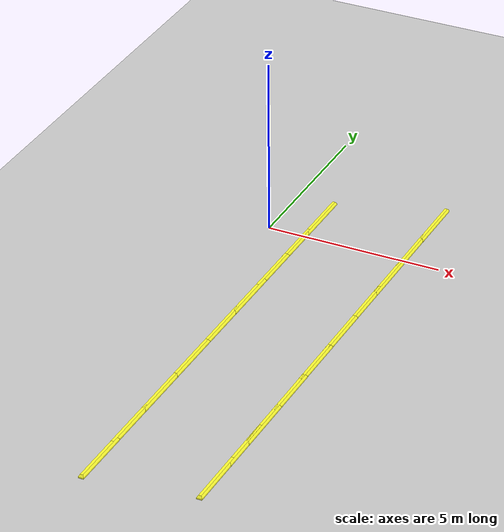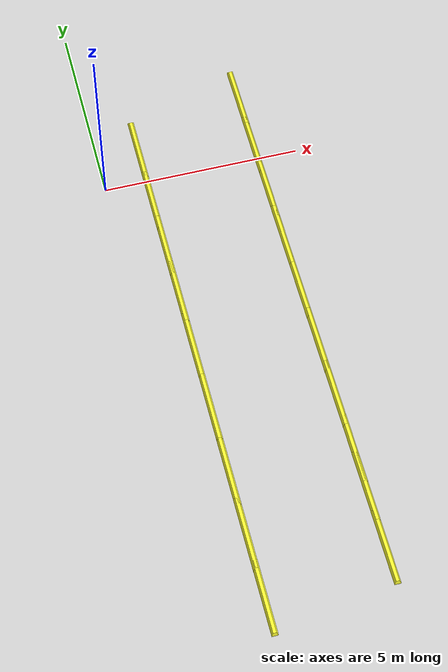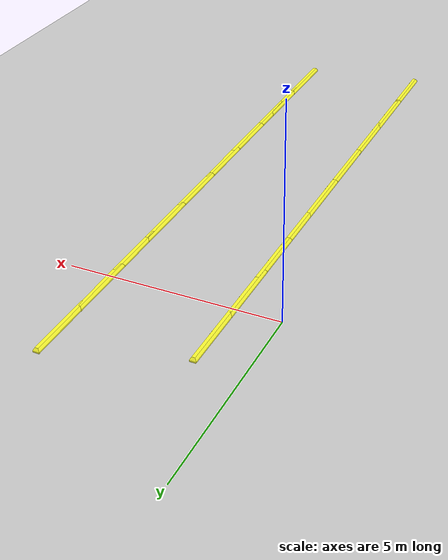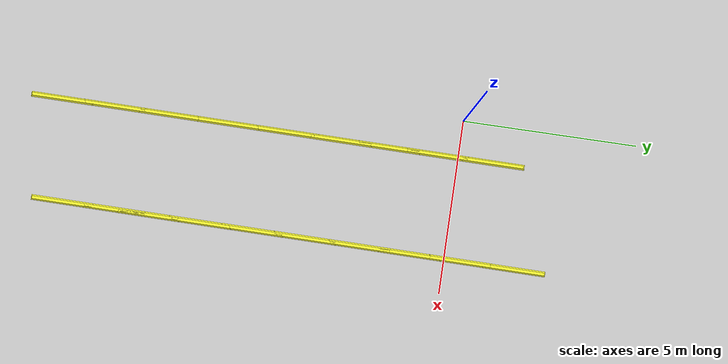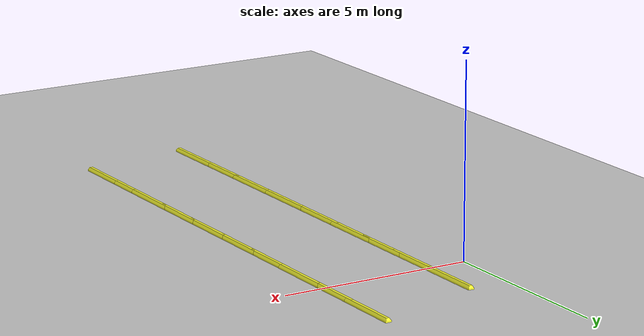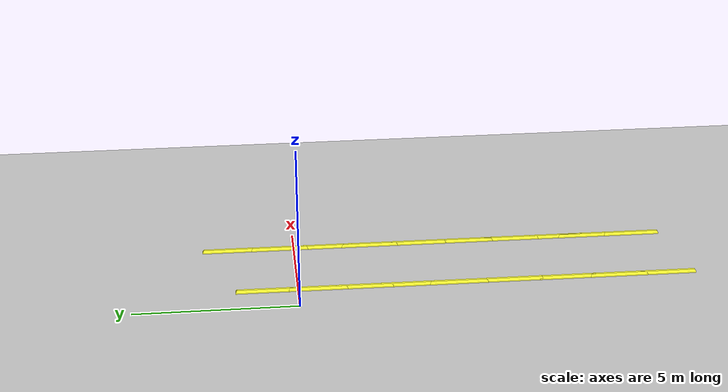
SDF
<sdf version="1.4">
 <world name="default">
  <light name="sun" type="directional">
   <pose>0 0 10 0 -0 0</pose>
   <diffuse>0.8 0.8 0.8 1</diffuse>
   <specular>0.2 0.2 0.2 1</specular>
   <attenuation>
    <range>1000</range>
    <constant>0.9</constant>
    <linear>0.01</linear>
    <quadratic>0.001</quadratic>
   </attenuation>
   <direction>-0.5 0.1 -0.9</direction>
  </light>
  <model name="ground_plane">
   <static>1</static>
   <link name="link">
    <collision name="collision">
     <geometry><plane><normal>0 0 1</normal><size>100 100</size></plane></geometry>
     <surface><friction><ode><mu>100</mu><mu2>50</mu2></ode></friction></surface>
    </collision>
    <visual name="visual">
     <cast_shadows>0</cast_shadows>
     <geometry><plane><normal>0 0 1</normal><size>100 100</size></plane></geometry>
     <material>
      <script><uri>file://media/materials/scripts/gazebo.material</uri><name>Gazebo/Grey</name></script>
     </material>
    </visual>
    <velocity_decay><linear>0</linear><angular>0</angular></velocity_decay>
   </link>
  </model>
  <physics type="ode">
   <max_step_size>0.001</max_step_size>
   <real_time_factor>1</real_time_factor>
   <real_time_update_rate>1000</real_time_update_rate>
   <gravity>0 0 -9.8</gravity>
  </physics>
  <scene><ambient>0.4 0.4 0.4 1</ambient><background>0.7 0.7 0.7 1</background><shadows>1</shadows></scene>
  <spherical_coordinates>
   <surface_model>EARTH_WGS84</surface_model>
   <latitude_deg>0</latitude_deg>
   <longitude_deg>0</longitude_deg>
   <elevation>0</elevation>
   <heading_deg>0</heading_deg>
  </spherical_coordinates>
  <model name="drc_practice_yellow_parking_block_1">
   <static>1</static>
   <link name="link">
    <visual name="visual">
     <geometry><mesh><uri>model://drc_practice_yellow_parking_block/meshes/block.dae</uri></mesh></geometry>
    </visual>
    <collision name="collision">
     <geometry><mesh><uri>model://drc_practice_yellow_parking_block/meshes/block.dae</uri></mesh></geometry>
    </collision>
    <velocity_decay><linear>0</linear><angular>0</angular></velocity_decay>
   </link>
   <pose>3.96924 -8.52654 0 0 -0 0</pose>
  </model>
  <model name="drc_practice_yellow_parking_block_2">
   <static>1</static>
   <link name="link">
    <visual name="visual">
     <geometry><mesh><uri>model://drc_practice_yellow_parking_block/meshes/block.dae</uri></mesh></geometry>
    </visual>
    <collision name="collision">
     <geometry><mesh><uri>model://drc_practice_yellow_parking_block/meshes/block.dae</uri></mesh></geometry>
    </collision>
    <velocity_decay><linear>0</linear><angular>0</angular></velocity_decay>
   </link>
   <pose>3.9746 -7.03427 0 0 -0 0</pose>
  </model>
  <model name="drc_practice_yellow_parking_block_3">
   <static>1</static>
   <link name="link">
    <visual name="visual">
     <geometry><mesh><uri>model://drc_practice_yellow_parking_block/meshes/block.dae</uri></mesh></geometry>
    </visual>
    <collision name="collision">
     <geometry><mesh><uri>model://drc_practice_yellow_parking_block/meshes/block.dae</uri></mesh></geometry>
    </collision>
    <velocity_decay><linear>0</linear><angular>0</angular></velocity_decay>
   </link>
   <pose>3.97817 -5.52959 0 0 -0 0</pose>
  </model>
  <model name="drc_practice_yellow_parking_block_4">
   <static>1</static>
   <link name="link">
    <visual name="visual">
     <geometry><mesh><uri>model://drc_practice_yellow_parking_block/meshes/block.dae</uri></mesh></geometry>
    </visual>
    <collision name="collision">
     <geometry><mesh><uri>model://drc_practice_yellow_parking_block/meshes/block.dae</uri></mesh></geometry>
    </collision>
    <velocity_decay><linear>0</linear><angular>0</angular></velocity_decay>
   </link>
   <pose>1.03243 -8.35123 0 0 -0 0</pose>
  </model>
  <model name="drc_practice_yellow_parking_block_5">
   <static>1</static>
   <link name="link">
    <visual name="visual">
     <geometry><mesh><uri>model://drc_practice_yellow_parking_block/meshes/block.dae</uri></mesh></geometry>
    </visual>
    <collision name="collision">
     <geometry><mesh><uri>model://drc_practice_yellow_parking_block/meshes/block.dae</uri></mesh></geometry>
    </collision>
    <velocity_decay><linear>0</linear><angular>0</angular></velocity_decay>
   </link>
   <pose>1.04108 -6.65814 0.001355 0 -0 0</pose>
  </model>
  <model name="drc_practice_yellow_parking_block_6">
   <static>1</static>
   <link name="link">
    <visual name="visual">
     <geometry><mesh><uri>model://drc_practice_yellow_parking_block/meshes/block.dae</uri></mesh></geometry>
    </visual>
    <collision name="collision">
     <geometry><mesh><uri>model://drc_practice_yellow_parking_block/meshes/block.dae</uri></mesh></geometry>
    </collision>
    <velocity_decay><linear>0</linear><angular>0</angular></velocity_decay>
   </link>
   <pose>1.05664 -3.39702 0 0 -0 0</pose>
  </model>
  <model name="drc_practice_yellow_parking_block_7">
   <static>1</static>
   <link name="link">
    <visual name="visual">
     <geometry><mesh><uri>model://drc_practice_yellow_parking_block/meshes/block.dae</uri></mesh></geometry>
    </visual>
    <collision name="collision">
     <geometry><mesh><uri>model://drc_practice_yellow_parking_block/meshes/block.dae</uri></mesh></geometry>
    </collision>
    <velocity_decay><linear>0</linear><angular>0</angular></velocity_decay>
   </link>
   <pose>1.04816 -4.94045 0 0 -0 0</pose>
  </model>
  <model name="drc_practice_yellow_parking_block_8">
   <static>1</static>
   <link name="link">
    <visual name="visual">
     <geometry><mesh><uri>model://drc_practice_yellow_parking_block/meshes/block.dae</uri></mesh></geometry>
    </visual>
    <collision name="collision">
     <geometry><mesh><uri>model://drc_practice_yellow_parking_block/meshes/block.dae</uri></mesh></geometry>
    </collision>
    <velocity_decay><linear>0</linear><angular>0</angular></velocity_decay>
   </link>
   <pose>1.0238 -9.95104 0 0 -0 0</pose>
  </model>
  <model name="drc_practice_yellow_parking_block_9">
   <static>1</static>
   <link name="link">
    <visual name="visual">
     <geometry><mesh><uri>model://drc_practice_yellow_parking_block/meshes/block.dae</uri></mesh></geometry>
    </visual>
    <collision name="collision">
     <geometry><mesh><uri>model://drc_practice_yellow_parking_block/meshes/block.dae</uri></mesh></geometry>
    </collision>
    <velocity_decay><linear>0</linear><angular>0</angular></velocity_decay>
   </link>
   <pose>3.96272 -9.5037 0 0 -0 0</pose>
  </model>
  <model name="drc_practice_yellow_parking_block_10">
   <static>1</static>
   <link name="link">
    <visual name="visual">
     <geometry><mesh><uri>model://drc_practice_yellow_parking_block/meshes/block.dae</uri></mesh></geometry>
    </visual>
    <collision name="collision">
     <geometry><mesh><uri>model://drc_practice_yellow_parking_block/meshes/block.dae</uri></mesh></geometry>
    </collision>
    <velocity_decay><linear>0</linear><angular>0</angular></velocity_decay>
   </link>
   <pose>3.98163 -4.00786 0 0 -0 0</pose>
  </model>
  <model name="drc_practice_yellow_parking_block_11">
   <static>1</static>
   <link name="link">
    <visual name="visual">
     <geometry><mesh><uri>model://drc_practice_yellow_parking_block/meshes/block.dae</uri></mesh></geometry>
    </visual>
    <collision name="collision">
     <geometry><mesh><uri>model://drc_practice_yellow_parking_block/meshes/block.dae</uri></mesh></geometry>
    </collision>
    <velocity_decay><linear>0</linear><angular>0</angular></velocity_decay>
   </link>
   <pose>3.9874 -2.43567 0 0 -0 0</pose>
  </model>
  <model name="drc_practice_yellow_parking_block_12">
   <static>1</static>
   <link name="link">
    <visual name="visual">
     <geometry><mesh><uri>model://drc_practice_yellow_parking_block/meshes/block.dae</uri></mesh></geometry>
    </visual>
    <collision name="collision">
     <geometry><mesh><uri>model://drc_practice_yellow_parking_block/meshes/block.dae</uri></mesh></geometry>
    </collision>
    <velocity_decay><linear>0</linear><angular>0</angular></velocity_decay>
   </link>
   <pose>1.06255 -2.00923 0 0 -0 0</pose>
  </model>
  <model name="drc_practice_yellow_parking_block_13">
   <static>1</static>
   <link name="link">
    <visual name="visual">
     <geometry><mesh><uri>model://drc_practice_yellow_parking_block/meshes/block.dae</uri></mesh></geometry>
    </visual>
    <collision name="collision">
     <geometry><mesh><uri>model://drc_practice_yellow_parking_block/meshes/block.dae</uri></mesh></geometry>
    </collision>
    <velocity_decay><linear>0</linear><angular>0</angular></velocity_decay>
   </link>
   <pose>1.0676 -0.608213 0 0 -0 0</pose>
  </model>
  <model name="drc_practice_yellow_parking_block_14">
   <static>1</static>
   <link name="link">
    <visual name="visual">
     <geometry><mesh><uri>model://drc_practice_yellow_parking_block/meshes/block.dae</uri></mesh></geometry>
    </visual>
    <collision name="collision">
     <geometry><mesh><uri>model://drc_practice_yellow_parking_block/meshes/block.dae</uri></mesh></geometry>
    </collision>
    <velocity_decay><linear>0</linear><angular>0</angular></velocity_decay>
   </link>
   <pose>1.07548 1.00305 0 0 -0 0</pose>
  </model>
  <model name="drc_practice_yellow_parking_block_15">
   <static>1</static>
   <link name="link">
    <visual name="visual">
     <geometry><mesh><uri>model://drc_practice_yellow_parking_block/meshes/block.dae</uri></mesh></geometry>
    </visual>
    <collision name="collision">
     <geometry><mesh><uri>model://drc_practice_yellow_parking_block/meshes/block.dae</uri></mesh></geometry>
    </collision>
    <velocity_decay><linear>0</linear><angular>0</angular></velocity_decay>
   </link>
   <pose>3.99573 -0.998656 0 0 -0 0</pose>
  </model>
  <model name="drc_practice_yellow_parking_block_16">
   <static>1</static>
   <link name="link">
    <visual name="visual">
     <geometry><mesh><uri>model://drc_practice_yellow_parking_block/meshes/block.dae</uri></mesh></geometry>
    </visual>
    <collision name="collision">
     <geometry><mesh><uri>model://drc_practice_yellow_parking_block/meshes/block.dae</uri></mesh></geometry>
    </collision>
    <velocity_decay><linear>0</linear><angular>0</angular></velocity_decay>
   </link>
   <pose>4 0.453844 0 0 -0 0</pose>
  </model>
  <model name="drc_practice_yellow_parking_block_17">
   <static>1</static>
   <link name="link">
    <visual name="visual">
     <geometry><mesh><uri>model://drc_practice_yellow_parking_block/meshes/block.dae</uri></mesh></geometry>
    </visual>
    <collision name="collision">
     <geometry><mesh><uri>model://drc_practice_yellow_parking_block/meshes/block.dae</uri></mesh></geometry>
    </collision>
    <velocity_decay><linear>0</linear><angular>0</angular></velocity_decay>
   </link>
   <pose>4.01002 2 0 0 -0 0</pose>
  </model>
  <model name="drc_practice_yellow_parking_block_18">
   <static>1</static>
   <link name="link">
    <visual name="visual">
     <geometry><mesh><uri>model://drc_practice_yellow_parking_block/meshes/block.dae</uri></mesh></geometry>
    </visual>
    <collision name="collision">
     <geometry><mesh><uri>model://drc_practice_yellow_parking_block/meshes/block.dae</uri></mesh></geometry>
    </collision>
    <velocity_decay><linear>0</linear><angular>0</angular></velocity_decay>
   </link>
   <pose>3.95473 -11.0169 0 0 -0 0</pose>
  </model>
  <model name="drc_practice_yellow_parking_block_19">
   <static>1</static>
   <link name="link">
    <visual name="visual">
     <geometry><mesh><uri>model://drc_practice_yellow_parking_block/meshes/block.dae</uri></mesh></geometry>
    </visual>
    <collision name="collision">
     <geometry><mesh><uri>model://drc_practice_yellow_parking_block/meshes/block.dae</uri></mesh></geometry>
    </collision>
    <velocity_decay><linear>0</linear><angular>0</angular></velocity_decay>
   </link>
   <pose>1.01914 -11.4876 0 0 -0 0</pose>
  </model>
 </world>
</sdf>
